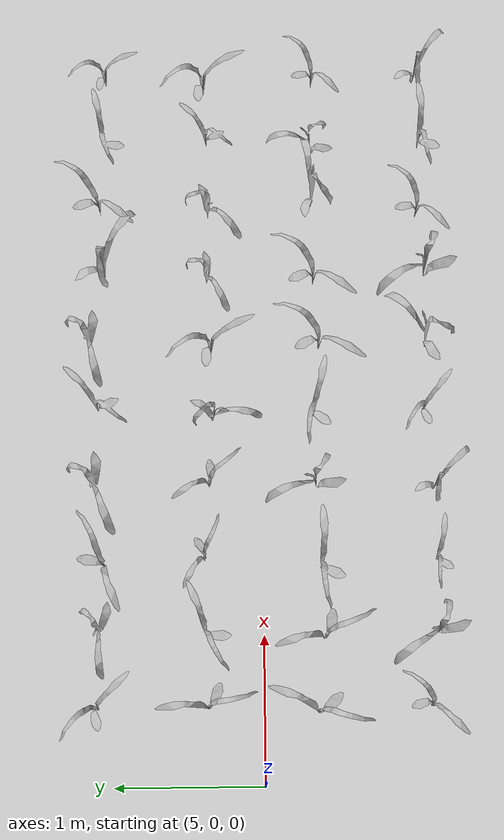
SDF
<sdf version="1.6">
 <world name="default">
  <model name="ground_plane">
   <static>1</static>
   <link name="link">
    <collision name="collision">
     <geometry><plane><normal>0 0 1</normal><size>100 100</size></plane></geometry>
     <surface>
      <contact><collide_bitmask>65535</collide_bitmask></contact>
      <friction><ode><mu>100</mu><mu2>50</mu2></ode></friction>
     </surface>
    </collision>
    <visual name="visual">
     <cast_shadows>0</cast_shadows>
     <geometry><plane><normal>0 0 1</normal><size>100 100</size></plane></geometry>
     <material>
      <script><uri>file://media/materials/scripts/gazebo.material</uri><name>Gazebo/Grey</name></script>
     </material>
    </visual>
   </link>
  </model>
  <model name="maize_02_0040">
   <pose>5.508538671722176 0.37122853467536077 0.05 0 -0 3.8519791514515536</pose>
   <link name="maize_02_0040_link">
    <inertial>
     <mass>5.0</mass>
     <inertia>
      <ixx>0.0033416667</ixx>
      <ixy>0</ixy>
      <ixz>0</ixz>
      <iyy>0.0033416667</iyy>
      <iyz>0</iyz>
      <izz>0.000016666667</izz>
     </inertia>
     <pose>0 0 0.1 0 0 0</pose>
    </inertial>
    <collision name="collision">
     <pose>0 0 0.2 0 -0 0</pose>
     <geometry><box><size>0.02 0.02 0.4</size></box></geometry>
     <surface><friction><ode><mu>10</mu><mu2>10</mu2></ode></friction></surface>
    </collision>
    <visual name="visual">
     <geometry>
      <mesh>
       <uri>model://maize_02/meshes/maize_02.dae</uri>
       <scale>0.6436153860965608 0.6436153860965608 0.6436153860965608</scale>
      </mesh>
     </geometry>
    </visual>
   </link>
  </model>
  <model name="maize_02_0041">
   <pose>5.508247634537746 1.1057725086224237 0.05 0 -0 1.3656492372692546</pose>
   <link name="maize_02_0041_link">
    <inertial>
     <mass>5.0</mass>
     <inertia>
      <ixx>0.0033416667</ixx>
      <ixy>0</ixy>
      <ixz>0</ixz>
      <iyy>0.0033416667</iyy>
      <iyz>0</iyz>
      <izz>0.000016666667</izz>
     </inertia>
     <pose>0 0 0.1 0 0 0</pose>
    </inertial>
    <collision name="collision">
     <pose>0 0 0.2 0 -0 0</pose>
     <geometry><box><size>0.02 0.02 0.4</size></box></geometry>
     <surface><friction><ode><mu>10</mu><mu2>10</mu2></ode></friction></surface>
    </collision>
    <visual name="visual">
     <geometry>
      <mesh>
       <uri>model://maize_02/meshes/maize_02.dae</uri>
       <scale>0.5968904333593144 0.5968904333593144 0.5968904333593144</scale>
      </mesh>
     </geometry>
    </visual>
   </link>
  </model>
  <model name="maize_02_0042">
   <pose>5.477564712540988 -0.3549859986503485 0.05 0 -0 3.381817545741341</pose>
   <link name="maize_02_0042_link">
    <inertial>
     <mass>5.0</mass>
     <inertia>
      <ixx>0.0033416667</ixx>
      <ixy>0</ixy>
      <ixz>0</ixz>
      <iyy>0.0033416667</iyy>
      <iyz>0</iyz>
      <izz>0.000016666667</izz>
     </inertia>
     <pose>0 0 0.1 0 0 0</pose>
    </inertial>
    <collision name="collision">
     <pose>0 0 0.2 0 -0 0</pose>
     <geometry><box><size>0.02 0.02 0.4</size></box></geometry>
     <surface><friction><ode><mu>10</mu><mu2>10</mu2></ode></friction></surface>
    </collision>
    <visual name="visual">
     <geometry>
      <mesh>
       <uri>model://maize_02/meshes/maize_02.dae</uri>
       <scale>0.6898692024972355 0.6898692024972355 0.6898692024972355</scale>
      </mesh>
     </geometry>
    </visual>
   </link>
  </model>
  <model name="maize_02_0043">
   <pose>5.513753535963712 -1.1026228524331758 0.05 0 -0 6.090240031902223</pose>
   <link name="maize_02_0043_link">
    <inertial>
     <mass>5.0</mass>
     <inertia>
      <ixx>0.0033416667</ixx>
      <ixy>0</ixy>
      <ixz>0</ixz>
      <iyy>0.0033416667</iyy>
      <iyz>0</iyz>
      <izz>0.000016666667</izz>
     </inertia>
     <pose>0 0 0.1 0 0 0</pose>
    </inertial>
    <collision name="collision">
     <pose>0 0 0.2 0 -0 0</pose>
     <geometry><box><size>0.02 0.02 0.4</size></box></geometry>
     <surface><friction><ode><mu>10</mu><mu2>10</mu2></ode></friction></surface>
    </collision>
    <visual name="visual">
     <geometry>
      <mesh>
       <uri>model://maize_02/meshes/maize_02.dae</uri>
       <scale>0.5732296245147511 0.5732296245147511 0.5732296245147511</scale>
      </mesh>
     </geometry>
    </visual>
   </link>
  </model>
  <model name="maize_02_0044">
   <pose>5.995136403965966 0.38139203172767944 0.05 0 -0 2.5735971861856024</pose>
   <link name="maize_02_0044_link">
    <inertial>
     <mass>5.0</mass>
     <inertia>
      <ixx>0.0033416667</ixx>
      <ixy>0</ixy>
      <ixz>0</ixz>
      <iyy>0.0033416667</iyy>
      <iyz>0</iyz>
      <izz>0.000016666667</izz>
     </inertia>
     <pose>0 0 0.1 0 0 0</pose>
    </inertial>
    <collision name="collision">
     <pose>0 0 0.2 0 -0 0</pose>
     <geometry><box><size>0.02 0.02 0.4</size></box></geometry>
     <surface><friction><ode><mu>10</mu><mu2>10</mu2></ode></friction></surface>
    </collision>
    <visual name="visual">
     <geometry>
      <mesh>
       <uri>model://maize_02/meshes/maize_02.dae</uri>
       <scale>0.6349071735627396 0.6349071735627396 0.6349071735627396</scale>
      </mesh>
     </geometry>
    </visual>
   </link>
  </model>
  <model name="maize_01_0045">
   <pose>6.030489953616502 1.0939182905264455 0.05 0 -0 4.014330397814</pose>
   <link name="maize_01_0045_link">
    <inertial>
     <mass>5.0</mass>
     <inertia>
      <ixx>0.0033416667</ixx>
      <ixy>0</ixy>
      <ixz>0</ixz>
      <iyy>0.0033416667</iyy>
      <iyz>0</iyz>
      <izz>0.000016666667</izz>
     </inertia>
     <pose>0 0 0.1 0 0 0</pose>
    </inertial>
    <collision name="collision">
     <pose>0 0 0.2 0 -0 0</pose>
     <geometry><box><size>0.02 0.02 0.4</size></box></geometry>
     <surface><friction><ode><mu>10</mu><mu2>10</mu2></ode></friction></surface>
    </collision>
    <visual name="visual">
     <geometry>
      <mesh>
       <uri>model://maize_01/meshes/maize_01.dae</uri>
       <scale>0.563741779426064 0.563741779426064 0.563741779426064</scale>
      </mesh>
     </geometry>
    </visual>
   </link>
  </model>
  <model name="maize_02_0046">
   <pose>5.964462491739474 -0.401234508534959 0.05 0 -0 4.0346840507894415</pose>
   <link name="maize_02_0046_link">
    <inertial>
     <mass>5.0</mass>
     <inertia>
      <ixx>0.0033416667</ixx>
      <ixy>0</ixy>
      <ixz>0</ixz>
      <iyy>0.0033416667</iyy>
      <iyz>0</iyz>
      <izz>0.000016666667</izz>
     </inertia>
     <pose>0 0 0.1 0 0 0</pose>
    </inertial>
    <collision name="collision">
     <pose>0 0 0.2 0 -0 0</pose>
     <geometry><box><size>0.02 0.02 0.4</size></box></geometry>
     <surface><friction><ode><mu>10</mu><mu2>10</mu2></ode></friction></surface>
    </collision>
    <visual name="visual">
     <geometry>
      <mesh>
       <uri>model://maize_02/meshes/maize_02.dae</uri>
       <scale>0.6661530232328033 0.6661530232328033 0.6661530232328033</scale>
      </mesh>
     </geometry>
    </visual>
   </link>
  </model>
  <model name="maize_01_0047">
   <pose>6.000341885603447 -1.166380562749363 0.05 0 -0 2.980441841507218</pose>
   <link name="maize_01_0047_link">
    <inertial>
     <mass>5.0</mass>
     <inertia>
      <ixx>0.0033416667</ixx>
      <ixy>0</ixy>
      <ixz>0</ixz>
      <iyy>0.0033416667</iyy>
      <iyz>0</iyz>
      <izz>0.000016666667</izz>
     </inertia>
     <pose>0 0 0.1 0 0 0</pose>
    </inertial>
    <collision name="collision">
     <pose>0 0 0.2 0 -0 0</pose>
     <geometry><box><size>0.02 0.02 0.4</size></box></geometry>
     <surface><friction><ode><mu>10</mu><mu2>10</mu2></ode></friction></surface>
    </collision>
    <visual name="visual">
     <geometry>
      <mesh>
       <uri>model://maize_01/meshes/maize_01.dae</uri>
       <scale>0.6481273047336568 0.6481273047336568 0.6481273047336568</scale>
      </mesh>
     </geometry>
    </visual>
   </link>
  </model>
  <model name="maize_02_0048">
   <pose>6.500896235067312 0.3994982656571864 0.05 0 -0 4.81775542901194</pose>
   <link name="maize_02_0048_link">
    <inertial>
     <mass>5.0</mass>
     <inertia>
      <ixx>0.0033416667</ixx>
      <ixy>0</ixy>
      <ixz>0</ixz>
      <iyy>0.0033416667</iyy>
      <iyz>0</iyz>
      <izz>0.000016666667</izz>
     </inertia>
     <pose>0 0 0.1 0 0 0</pose>
    </inertial>
    <collision name="collision">
     <pose>0 0 0.2 0 -0 0</pose>
     <geometry><box><size>0.02 0.02 0.4</size></box></geometry>
     <surface><friction><ode><mu>10</mu><mu2>10</mu2></ode></friction></surface>
    </collision>
    <visual name="visual">
     <geometry>
      <mesh>
       <uri>model://maize_02/meshes/maize_02.dae</uri>
       <scale>0.518825003112277 0.518825003112277 0.518825003112277</scale>
      </mesh>
     </geometry>
    </visual>
   </link>
  </model>
  <model name="maize_02_0049">
   <pose>6.433553168775987 1.0645917721028815 0.05 0 -0 5.684805562511841</pose>
   <link name="maize_02_0049_link">
    <inertial>
     <mass>5.0</mass>
     <inertia>
      <ixx>0.0033416667</ixx>
      <ixy>0</ixy>
      <ixz>0</ixz>
      <iyy>0.0033416667</iyy>
      <iyz>0</iyz>
      <izz>0.000016666667</izz>
     </inertia>
     <pose>0 0 0.1 0 0 0</pose>
    </inertial>
    <collision name="collision">
     <pose>0 0 0.2 0 -0 0</pose>
     <geometry><box><size>0.02 0.02 0.4</size></box></geometry>
     <surface><friction><ode><mu>10</mu><mu2>10</mu2></ode></friction></surface>
    </collision>
    <visual name="visual">
     <geometry>
      <mesh>
       <uri>model://maize_02/meshes/maize_02.dae</uri>
       <scale>0.6878711777327553 0.6878711777327553 0.6878711777327553</scale>
      </mesh>
     </geometry>
    </visual>
   </link>
  </model>
  <model name="maize_02_0050">
   <pose>6.439828008021891 -0.39327675813698565 0.05 0 -0 2.194946283106781</pose>
   <link name="maize_02_0050_link">
    <inertial>
     <mass>5.0</mass>
     <inertia>
      <ixx>0.0033416667</ixx>
      <ixy>0</ixy>
      <ixz>0</ixz>
      <iyy>0.0033416667</iyy>
      <iyz>0</iyz>
      <izz>0.000016666667</izz>
     </inertia>
     <pose>0 0 0.1 0 0 0</pose>
    </inertial>
    <collision name="collision">
     <pose>0 0 0.2 0 -0 0</pose>
     <geometry><box><size>0.02 0.02 0.4</size></box></geometry>
     <surface><friction><ode><mu>10</mu><mu2>10</mu2></ode></friction></surface>
    </collision>
    <visual name="visual">
     <geometry>
      <mesh>
       <uri>model://maize_02/meshes/maize_02.dae</uri>
       <scale>0.6766791331188605 0.6766791331188605 0.6766791331188605</scale>
      </mesh>
     </geometry>
    </visual>
   </link>
  </model>
  <model name="maize_02_0051">
   <pose>6.4901297735478405 -1.1700547971684288 0.05 0 -0 2.040236803387504</pose>
   <link name="maize_02_0051_link">
    <inertial>
     <mass>5.0</mass>
     <inertia>
      <ixx>0.0033416667</ixx>
      <ixy>0</ixy>
      <ixz>0</ixz>
      <iyy>0.0033416667</iyy>
      <iyz>0</iyz>
      <izz>0.000016666667</izz>
     </inertia>
     <pose>0 0 0.1 0 0 0</pose>
    </inertial>
    <collision name="collision">
     <pose>0 0 0.2 0 -0 0</pose>
     <geometry><box><size>0.02 0.02 0.4</size></box></geometry>
     <surface><friction><ode><mu>10</mu><mu2>10</mu2></ode></friction></surface>
    </collision>
    <visual name="visual">
     <geometry>
      <mesh>
       <uri>model://maize_02/meshes/maize_02.dae</uri>
       <scale>0.5012869665421671 0.5012869665421671 0.5012869665421671</scale>
      </mesh>
     </geometry>
    </visual>
   </link>
  </model>
  <model name="maize_02_0052">
   <pose>7.013105737039357 0.3662585339719964 0.05 0 -0 4.324599567351815</pose>
   <link name="maize_02_0052_link">
    <inertial>
     <mass>5.0</mass>
     <inertia>
      <ixx>0.0033416667</ixx>
      <ixy>0</ixy>
      <ixz>0</ixz>
      <iyy>0.0033416667</iyy>
      <iyz>0</iyz>
      <izz>0.000016666667</izz>
     </inertia>
     <pose>0 0 0.1 0 0 0</pose>
    </inertial>
    <collision name="collision">
     <pose>0 0 0.2 0 -0 0</pose>
     <geometry><box><size>0.02 0.02 0.4</size></box></geometry>
     <surface><friction><ode><mu>10</mu><mu2>10</mu2></ode></friction></surface>
    </collision>
    <visual name="visual">
     <geometry>
      <mesh>
       <uri>model://maize_02/meshes/maize_02.dae</uri>
       <scale>0.5473615412480283 0.5473615412480283 0.5473615412480283</scale>
      </mesh>
     </geometry>
    </visual>
   </link>
  </model>
  <model name="maize_01_0053">
   <pose>7.0058815124098635 1.1473312754775373 0.05 0 -0 4.311882094984159</pose>
   <link name="maize_01_0053_link">
    <inertial>
     <mass>5.0</mass>
     <inertia>
      <ixx>0.0033416667</ixx>
      <ixy>0</ixy>
      <ixz>0</ixz>
      <iyy>0.0033416667</iyy>
      <iyz>0</iyz>
      <izz>0.000016666667</izz>
     </inertia>
     <pose>0 0 0.1 0 0 0</pose>
    </inertial>
    <collision name="collision">
     <pose>0 0 0.2 0 -0 0</pose>
     <geometry><box><size>0.02 0.02 0.4</size></box></geometry>
     <surface><friction><ode><mu>10</mu><mu2>10</mu2></ode></friction></surface>
    </collision>
    <visual name="visual">
     <geometry>
      <mesh>
       <uri>model://maize_01/meshes/maize_01.dae</uri>
       <scale>0.6547409183923741 0.6547409183923741 0.6547409183923741</scale>
      </mesh>
     </geometry>
    </visual>
   </link>
  </model>
  <model name="maize_01_0054">
   <pose>7.001911262957034 -0.37030657016197815 0.05 0 -0 2.762685588442463</pose>
   <link name="maize_01_0054_link">
    <inertial>
     <mass>5.0</mass>
     <inertia>
      <ixx>0.0033416667</ixx>
      <ixy>0</ixy>
      <ixz>0</ixz>
      <iyy>0.0033416667</iyy>
      <iyz>0</iyz>
      <izz>0.000016666667</izz>
     </inertia>
     <pose>0 0 0.1 0 0 0</pose>
    </inertial>
    <collision name="collision">
     <pose>0 0 0.2 0 -0 0</pose>
     <geometry><box><size>0.02 0.02 0.4</size></box></geometry>
     <surface><friction><ode><mu>10</mu><mu2>10</mu2></ode></friction></surface>
    </collision>
    <visual name="visual">
     <geometry>
      <mesh>
       <uri>model://maize_01/meshes/maize_01.dae</uri>
       <scale>0.6290712766403317 0.6290712766403317 0.6290712766403317</scale>
      </mesh>
     </geometry>
    </visual>
   </link>
  </model>
  <model name="maize_01_0055">
   <pose>6.984045931779279 -1.1730163140719292 0.05 0 -0 0.015325419385185446</pose>
   <link name="maize_01_0055_link">
    <inertial>
     <mass>5.0</mass>
     <inertia>
      <ixx>0.0033416667</ixx>
      <ixy>0</ixy>
      <ixz>0</ixz>
      <iyy>0.0033416667</iyy>
      <iyz>0</iyz>
      <izz>0.000016666667</izz>
     </inertia>
     <pose>0 0 0.1 0 0 0</pose>
    </inertial>
    <collision name="collision">
     <pose>0 0 0.2 0 -0 0</pose>
     <geometry><box><size>0.02 0.02 0.4</size></box></geometry>
     <surface><friction><ode><mu>10</mu><mu2>10</mu2></ode></friction></surface>
    </collision>
    <visual name="visual">
     <geometry>
      <mesh>
       <uri>model://maize_01/meshes/maize_01.dae</uri>
       <scale>0.5232495200038368 0.5232495200038368 0.5232495200038368</scale>
      </mesh>
     </geometry>
    </visual>
   </link>
  </model>
  <model name="maize_01_0056">
   <pose>7.479353431787276 0.3416016435857694 0.05 0 -0 5.387166048303825</pose>
   <link name="maize_01_0056_link">
    <inertial>
     <mass>5.0</mass>
     <inertia>
      <ixx>0.0033416667</ixx>
      <ixy>0</ixy>
      <ixz>0</ixz>
      <iyy>0.0033416667</iyy>
      <iyz>0</iyz>
      <izz>0.000016666667</izz>
     </inertia>
     <pose>0 0 0.1 0 0 0</pose>
    </inertial>
    <collision name="collision">
     <pose>0 0 0.2 0 -0 0</pose>
     <geometry><box><size>0.02 0.02 0.4</size></box></geometry>
     <surface><friction><ode><mu>10</mu><mu2>10</mu2></ode></friction></surface>
    </collision>
    <visual name="visual">
     <geometry>
      <mesh>
       <uri>model://maize_01/meshes/maize_01.dae</uri>
       <scale>0.5590582129818472 0.5590582129818472 0.5590582129818472</scale>
      </mesh>
     </geometry>
    </visual>
   </link>
  </model>
  <model name="maize_02_0057">
   <pose>7.552459032273766 1.1293749127234762 0.05 0 -0 2.9601093972392585</pose>
   <link name="maize_02_0057_link">
    <inertial>
     <mass>5.0</mass>
     <inertia>
      <ixx>0.0033416667</ixx>
      <ixy>0</ixy>
      <ixz>0</ixz>
      <iyy>0.0033416667</iyy>
      <iyz>0</iyz>
      <izz>0.000016666667</izz>
     </inertia>
     <pose>0 0 0.1 0 0 0</pose>
    </inertial>
    <collision name="collision">
     <pose>0 0 0.2 0 -0 0</pose>
     <geometry><box><size>0.02 0.02 0.4</size></box></geometry>
     <surface><friction><ode><mu>10</mu><mu2>10</mu2></ode></friction></surface>
    </collision>
    <visual name="visual">
     <geometry>
      <mesh>
       <uri>model://maize_02/meshes/maize_02.dae</uri>
       <scale>0.5849335303680044 0.5849335303680044 0.5849335303680044</scale>
      </mesh>
     </geometry>
    </visual>
   </link>
  </model>
  <model name="maize_02_0058">
   <pose>7.510307462987893 -0.3559981346182162 0.05 0 -0 1.9501614496749535</pose>
   <link name="maize_02_0058_link">
    <inertial>
     <mass>5.0</mass>
     <inertia>
      <ixx>0.0033416667</ixx>
      <ixy>0</ixy>
      <ixz>0</ixz>
      <iyy>0.0033416667</iyy>
      <iyz>0</iyz>
      <izz>0.000016666667</izz>
     </inertia>
     <pose>0 0 0.1 0 0 0</pose>
    </inertial>
    <collision name="collision">
     <pose>0 0 0.2 0 -0 0</pose>
     <geometry><box><size>0.02 0.02 0.4</size></box></geometry>
     <surface><friction><ode><mu>10</mu><mu2>10</mu2></ode></friction></surface>
    </collision>
    <visual name="visual">
     <geometry>
      <mesh>
       <uri>model://maize_02/meshes/maize_02.dae</uri>
       <scale>0.6255541333146815 0.6255541333146815 0.6255541333146815</scale>
      </mesh>
     </geometry>
    </visual>
   </link>
  </model>
  <model name="maize_02_0059">
   <pose>7.524576231798705 -1.1128361373226654 0.05 0 -0 1.4912331629375006</pose>
   <link name="maize_02_0059_link">
    <inertial>
     <mass>5.0</mass>
     <inertia>
      <ixx>0.0033416667</ixx>
      <ixy>0</ixy>
      <ixz>0</ixz>
      <iyy>0.0033416667</iyy>
      <iyz>0</iyz>
      <izz>0.000016666667</izz>
     </inertia>
     <pose>0 0 0.1 0 0 0</pose>
    </inertial>
    <collision name="collision">
     <pose>0 0 0.2 0 -0 0</pose>
     <geometry><box><size>0.02 0.02 0.4</size></box></geometry>
     <surface><friction><ode><mu>10</mu><mu2>10</mu2></ode></friction></surface>
    </collision>
    <visual name="visual">
     <geometry>
      <mesh>
       <uri>model://maize_02/meshes/maize_02.dae</uri>
       <scale>0.5276945218734642 0.5276945218734642 0.5276945218734642</scale>
      </mesh>
     </geometry>
    </visual>
   </link>
  </model>
  <model name="maize_02_0060">
   <pose>7.967128897022946 0.3516446050761034 0.05 0 -0 1.0541702332070162</pose>
   <link name="maize_02_0060_link">
    <inertial>
     <mass>5.0</mass>
     <inertia>
      <ixx>0.0033416667</ixx>
      <ixy>0</ixy>
      <ixz>0</ixz>
      <iyy>0.0033416667</iyy>
      <iyz>0</iyz>
      <izz>0.000016666667</izz>
     </inertia>
     <pose>0 0 0.1 0 0 0</pose>
    </inertial>
    <collision name="collision">
     <pose>0 0 0.2 0 -0 0</pose>
     <geometry><box><size>0.02 0.02 0.4</size></box></geometry>
     <surface><friction><ode><mu>10</mu><mu2>10</mu2></ode></friction></surface>
    </collision>
    <visual name="visual">
     <geometry>
      <mesh>
       <uri>model://maize_02/meshes/maize_02.dae</uri>
       <scale>0.6547558853223315 0.6547558853223315 0.6547558853223315</scale>
      </mesh>
     </geometry>
    </visual>
   </link>
  </model>
  <model name="maize_01_0061">
   <pose>8.025357547890483 1.1958245689321003 0.05 0 -0 4.187616569241914</pose>
   <link name="maize_01_0061_link">
    <inertial>
     <mass>5.0</mass>
     <inertia>
      <ixx>0.0033416667</ixx>
      <ixy>0</ixy>
      <ixz>0</ixz>
      <iyy>0.0033416667</iyy>
      <iyz>0</iyz>
      <izz>0.000016666667</izz>
     </inertia>
     <pose>0 0 0.1 0 0 0</pose>
    </inertial>
    <collision name="collision">
     <pose>0 0 0.2 0 -0 0</pose>
     <geometry><box><size>0.02 0.02 0.4</size></box></geometry>
     <surface><friction><ode><mu>10</mu><mu2>10</mu2></ode></friction></surface>
    </collision>
    <visual name="visual">
     <geometry>
      <mesh>
       <uri>model://maize_01/meshes/maize_01.dae</uri>
       <scale>0.6160220805500088 0.6160220805500088 0.6160220805500088</scale>
      </mesh>
     </geometry>
    </visual>
   </link>
  </model>
  <model name="maize_02_0062">
   <pose>7.991043654919017 -0.3999523052047669 0.05 0 -0 0.04643870348771934</pose>
   <link name="maize_02_0062_link">
    <inertial>
     <mass>5.0</mass>
     <inertia>
      <ixx>0.0033416667</ixx>
      <ixy>0</ixy>
      <ixz>0</ixz>
      <iyy>0.0033416667</iyy>
      <iyz>0</iyz>
      <izz>0.000016666667</izz>
     </inertia>
     <pose>0 0 0.1 0 0 0</pose>
    </inertial>
    <collision name="collision">
     <pose>0 0 0.2 0 -0 0</pose>
     <geometry><box><size>0.02 0.02 0.4</size></box></geometry>
     <surface><friction><ode><mu>10</mu><mu2>10</mu2></ode></friction></surface>
    </collision>
    <visual name="visual">
     <geometry>
      <mesh>
       <uri>model://maize_02/meshes/maize_02.dae</uri>
       <scale>0.6944440376925065 0.6944440376925065 0.6944440376925065</scale>
      </mesh>
     </geometry>
    </visual>
   </link>
  </model>
  <model name="maize_01_0063">
   <pose>8.010794559632046 -1.1463470504491677 0.05 0 -0 1.5970168984143949</pose>
   <link name="maize_01_0063_link">
    <inertial>
     <mass>5.0</mass>
     <inertia>
      <ixx>0.0033416667</ixx>
      <ixy>0</ixy>
      <ixz>0</ixz>
      <iyy>0.0033416667</iyy>
      <iyz>0</iyz>
      <izz>0.000016666667</izz>
     </inertia>
     <pose>0 0 0.1 0 0 0</pose>
    </inertial>
    <collision name="collision">
     <pose>0 0 0.2 0 -0 0</pose>
     <geometry><box><size>0.02 0.02 0.4</size></box></geometry>
     <surface><friction><ode><mu>10</mu><mu2>10</mu2></ode></friction></surface>
    </collision>
    <visual name="visual">
     <geometry>
      <mesh>
       <uri>model://maize_01/meshes/maize_01.dae</uri>
       <scale>0.6521103392606552 0.6521103392606552 0.6521103392606552</scale>
      </mesh>
     </geometry>
    </visual>
   </link>
  </model>
  <model name="maize_01_0064">
   <pose>8.488983933144842 0.38167689782954617 0.05 0 -0 4.425491630526248</pose>
   <link name="maize_01_0064_link">
    <inertial>
     <mass>5.0</mass>
     <inertia>
      <ixx>0.0033416667</ixx>
      <ixy>0</ixy>
      <ixz>0</ixz>
      <iyy>0.0033416667</iyy>
      <iyz>0</iyz>
      <izz>0.000016666667</izz>
     </inertia>
     <pose>0 0 0.1 0 0 0</pose>
    </inertial>
    <collision name="collision">
     <pose>0 0 0.2 0 -0 0</pose>
     <geometry><box><size>0.02 0.02 0.4</size></box></geometry>
     <surface><friction><ode><mu>10</mu><mu2>10</mu2></ode></friction></surface>
    </collision>
    <visual name="visual">
     <geometry>
      <mesh>
       <uri>model://maize_01/meshes/maize_01.dae</uri>
       <scale>0.5294811405635217 0.5294811405635217 0.5294811405635217</scale>
      </mesh>
     </geometry>
    </visual>
   </link>
  </model>
  <model name="maize_01_0065">
   <pose>8.538025914869634 1.100922375025421 0.05 0 -0 0.2256752153151473</pose>
   <link name="maize_01_0065_link">
    <inertial>
     <mass>5.0</mass>
     <inertia>
      <ixx>0.0033416667</ixx>
      <ixy>0</ixy>
      <ixz>0</ixz>
      <iyy>0.0033416667</iyy>
      <iyz>0</iyz>
      <izz>0.000016666667</izz>
     </inertia>
     <pose>0 0 0.1 0 0 0</pose>
    </inertial>
    <collision name="collision">
     <pose>0 0 0.2 0 -0 0</pose>
     <geometry><box><size>0.02 0.02 0.4</size></box></geometry>
     <surface><friction><ode><mu>10</mu><mu2>10</mu2></ode></friction></surface>
    </collision>
    <visual name="visual">
     <geometry>
      <mesh>
       <uri>model://maize_01/meshes/maize_01.dae</uri>
       <scale>0.6982697495104015 0.6982697495104015 0.6982697495104015</scale>
      </mesh>
     </geometry>
    </visual>
   </link>
  </model>
  <model name="maize_02_0066">
   <pose>8.46835413430239 -0.3677256704935248 0.05 0 -0 6.24193182697013</pose>
   <link name="maize_02_0066_link">
    <inertial>
     <mass>5.0</mass>
     <inertia>
      <ixx>0.0033416667</ixx>
      <ixy>0</ixy>
      <ixz>0</ixz>
      <iyy>0.0033416667</iyy>
      <iyz>0</iyz>
      <izz>0.000016666667</izz>
     </inertia>
     <pose>0 0 0.1 0 0 0</pose>
    </inertial>
    <collision name="collision">
     <pose>0 0 0.2 0 -0 0</pose>
     <geometry><box><size>0.02 0.02 0.4</size></box></geometry>
     <surface><friction><ode><mu>10</mu><mu2>10</mu2></ode></friction></surface>
    </collision>
    <visual name="visual">
     <geometry>
      <mesh>
       <uri>model://maize_02/meshes/maize_02.dae</uri>
       <scale>0.6861181668454427 0.6861181668454427 0.6861181668454427</scale>
      </mesh>
     </geometry>
    </visual>
   </link>
  </model>
  <model name="maize_01_0067">
   <pose>8.52888216326449 -1.156221202146838 0.05 0 -0 2.9477891915583605</pose>
   <link name="maize_01_0067_link">
    <inertial>
     <mass>5.0</mass>
     <inertia>
      <ixx>0.0033416667</ixx>
      <ixy>0</ixy>
      <ixz>0</ixz>
      <iyy>0.0033416667</iyy>
      <iyz>0</iyz>
      <izz>0.000016666667</izz>
     </inertia>
     <pose>0 0 0.1 0 0 0</pose>
    </inertial>
    <collision name="collision">
     <pose>0 0 0.2 0 -0 0</pose>
     <geometry><box><size>0.02 0.02 0.4</size></box></geometry>
     <surface><friction><ode><mu>10</mu><mu2>10</mu2></ode></friction></surface>
    </collision>
    <visual name="visual">
     <geometry>
      <mesh>
       <uri>model://maize_01/meshes/maize_01.dae</uri>
       <scale>0.6991678110856178 0.6991678110856178 0.6991678110856178</scale>
      </mesh>
     </geometry>
    </visual>
   </link>
  </model>
  <model name="maize_01_0068">
   <pose>8.984433488908518 0.3736283479455351 0.05 0 -0 4.6732418556630275</pose>
   <link name="maize_01_0068_link">
    <inertial>
     <mass>5.0</mass>
     <inertia>
      <ixx>0.0033416667</ixx>
      <ixy>0</ixy>
      <ixz>0</ixz>
      <iyy>0.0033416667</iyy>
      <iyz>0</iyz>
      <izz>0.000016666667</izz>
     </inertia>
     <pose>0 0 0.1 0 0 0</pose>
    </inertial>
    <collision name="collision">
     <pose>0 0 0.2 0 -0 0</pose>
     <geometry><box><size>0.02 0.02 0.4</size></box></geometry>
     <surface><friction><ode><mu>10</mu><mu2>10</mu2></ode></friction></surface>
    </collision>
    <visual name="visual">
     <geometry>
      <mesh>
       <uri>model://maize_01/meshes/maize_01.dae</uri>
       <scale>0.5650532563452445 0.5650532563452445 0.5650532563452445</scale>
      </mesh>
     </geometry>
    </visual>
   </link>
  </model>
  <model name="maize_02_0069">
   <pose>9.0100271684567 1.1383294759894174 0.05 0 -0 6.182265710813368</pose>
   <link name="maize_02_0069_link">
    <inertial>
     <mass>5.0</mass>
     <inertia>
      <ixx>0.0033416667</ixx>
      <ixy>0</ixy>
      <ixz>0</ixz>
      <iyy>0.0033416667</iyy>
      <iyz>0</iyz>
      <izz>0.000016666667</izz>
     </inertia>
     <pose>0 0 0.1 0 0 0</pose>
    </inertial>
    <collision name="collision">
     <pose>0 0 0.2 0 -0 0</pose>
     <geometry><box><size>0.02 0.02 0.4</size></box></geometry>
     <surface><friction><ode><mu>10</mu><mu2>10</mu2></ode></friction></surface>
    </collision>
    <visual name="visual">
     <geometry>
      <mesh>
       <uri>model://maize_02/meshes/maize_02.dae</uri>
       <scale>0.6707688918958439 0.6707688918958439 0.6707688918958439</scale>
      </mesh>
     </geometry>
    </visual>
   </link>
  </model>
  <model name="maize_01_0070">
   <pose>9.067221416240958 -0.3695165919739534 0.05 0 -0 0.9394603010474375</pose>
   <link name="maize_01_0070_link">
    <inertial>
     <mass>5.0</mass>
     <inertia>
      <ixx>0.0033416667</ixx>
      <ixy>0</ixy>
      <ixz>0</ixz>
      <iyy>0.0033416667</iyy>
      <iyz>0</iyz>
      <izz>0.000016666667</izz>
     </inertia>
     <pose>0 0 0.1 0 0 0</pose>
    </inertial>
    <collision name="collision">
     <pose>0 0 0.2 0 -0 0</pose>
     <geometry><box><size>0.02 0.02 0.4</size></box></geometry>
     <surface><friction><ode><mu>10</mu><mu2>10</mu2></ode></friction></surface>
    </collision>
    <visual name="visual">
     <geometry>
      <mesh>
       <uri>model://maize_01/meshes/maize_01.dae</uri>
       <scale>0.6364867699887353 0.6364867699887353 0.6364867699887353</scale>
      </mesh>
     </geometry>
    </visual>
   </link>
  </model>
  <model name="maize_02_0071">
   <pose>8.968608668467509 -1.1089136914546232 0.05 0 -0 6.026629583860258</pose>
   <link name="maize_02_0071_link">
    <inertial>
     <mass>5.0</mass>
     <inertia>
      <ixx>0.0033416667</ixx>
      <ixy>0</ixy>
      <ixz>0</ixz>
      <iyy>0.0033416667</iyy>
      <iyz>0</iyz>
      <izz>0.000016666667</izz>
     </inertia>
     <pose>0 0 0.1 0 0 0</pose>
    </inertial>
    <collision name="collision">
     <pose>0 0 0.2 0 -0 0</pose>
     <geometry><box><size>0.02 0.02 0.4</size></box></geometry>
     <surface><friction><ode><mu>10</mu><mu2>10</mu2></ode></friction></surface>
    </collision>
    <visual name="visual">
     <geometry>
      <mesh>
       <uri>model://maize_02/meshes/maize_02.dae</uri>
       <scale>0.6018682463665869 0.6018682463665869 0.6018682463665869</scale>
      </mesh>
     </geometry>
    </visual>
   </link>
  </model>
  <model name="maize_02_0072">
   <pose>9.53924674021463 0.3818068151574791 0.05 0 -0 2.9533368257817014</pose>
   <link name="maize_02_0072_link">
    <inertial>
     <mass>5.0</mass>
     <inertia>
      <ixx>0.0033416667</ixx>
      <ixy>0</ixy>
      <ixz>0</ixz>
      <iyy>0.0033416667</iyy>
      <iyz>0</iyz>
      <izz>0.000016666667</izz>
     </inertia>
     <pose>0 0 0.1 0 0 0</pose>
    </inertial>
    <collision name="collision">
     <pose>0 0 0.2 0 -0 0</pose>
     <geometry><box><size>0.02 0.02 0.4</size></box></geometry>
     <surface><friction><ode><mu>10</mu><mu2>10</mu2></ode></friction></surface>
    </collision>
    <visual name="visual">
     <geometry>
      <mesh>
       <uri>model://maize_02/meshes/maize_02.dae</uri>
       <scale>0.5025044564252708 0.5025044564252708 0.5025044564252708</scale>
      </mesh>
     </geometry>
    </visual>
   </link>
  </model>
  <model name="maize_02_0073">
   <pose>9.498138914861062 1.1056986818622243 0.05 0 -0 2.4020923645662595</pose>
   <link name="maize_02_0073_link">
    <inertial>
     <mass>5.0</mass>
     <inertia>
      <ixx>0.0033416667</ixx>
      <ixy>0</ixy>
      <ixz>0</ixz>
      <iyy>0.0033416667</iyy>
      <iyz>0</iyz>
      <izz>0.000016666667</izz>
     </inertia>
     <pose>0 0 0.1 0 0 0</pose>
    </inertial>
    <collision name="collision">
     <pose>0 0 0.2 0 -0 0</pose>
     <geometry><box><size>0.02 0.02 0.4</size></box></geometry>
     <surface><friction><ode><mu>10</mu><mu2>10</mu2></ode></friction></surface>
    </collision>
    <visual name="visual">
     <geometry>
      <mesh>
       <uri>model://maize_02/meshes/maize_02.dae</uri>
       <scale>0.6094754086747837 0.6094754086747837 0.6094754086747837</scale>
      </mesh>
     </geometry>
    </visual>
   </link>
  </model>
  <model name="maize_01_0074">
   <pose>9.476553444214236 -0.3721577568450272 0.05 0 -0 2.401996951828859</pose>
   <link name="maize_01_0074_link">
    <inertial>
     <mass>5.0</mass>
     <inertia>
      <ixx>0.0033416667</ixx>
      <ixy>0</ixy>
      <ixz>0</ixz>
      <iyy>0.0033416667</iyy>
      <iyz>0</iyz>
      <izz>0.000016666667</izz>
     </inertia>
     <pose>0 0 0.1 0 0 0</pose>
    </inertial>
    <collision name="collision">
     <pose>0 0 0.2 0 -0 0</pose>
     <geometry><box><size>0.02 0.02 0.4</size></box></geometry>
     <surface><friction><ode><mu>10</mu><mu2>10</mu2></ode></friction></surface>
    </collision>
    <visual name="visual">
     <geometry>
      <mesh>
       <uri>model://maize_01/meshes/maize_01.dae</uri>
       <scale>0.5258600512704489 0.5258600512704489 0.5258600512704489</scale>
      </mesh>
     </geometry>
    </visual>
   </link>
  </model>
  <model name="maize_02_0075">
   <pose>9.493655640496575 -1.1420428278874688 0.05 0 -0 2.2325181513569476</pose>
   <link name="maize_02_0075_link">
    <inertial>
     <mass>5.0</mass>
     <inertia>
      <ixx>0.0033416667</ixx>
      <ixy>0</ixy>
      <ixz>0</ixz>
      <iyy>0.0033416667</iyy>
      <iyz>0</iyz>
      <izz>0.000016666667</izz>
     </inertia>
     <pose>0 0 0.1 0 0 0</pose>
    </inertial>
    <collision name="collision">
     <pose>0 0 0.2 0 -0 0</pose>
     <geometry><box><size>0.02 0.02 0.4</size></box></geometry>
     <surface><friction><ode><mu>10</mu><mu2>10</mu2></ode></friction></surface>
    </collision>
    <visual name="visual">
     <geometry>
      <mesh>
       <uri>model://maize_02/meshes/maize_02.dae</uri>
       <scale>0.6390689645392028 0.6390689645392028 0.6390689645392028</scale>
      </mesh>
     </geometry>
    </visual>
   </link>
  </model>
  <model name="maize_02_0076">
   <pose>9.940457432794531 0.40286953500578737 0.05 0 -0 1.0488333325210475</pose>
   <link name="maize_02_0076_link">
    <inertial>
     <mass>5.0</mass>
     <inertia>
      <ixx>0.0033416667</ixx>
      <ixy>0</ixy>
      <ixz>0</ixz>
      <iyy>0.0033416667</iyy>
      <iyz>0</iyz>
      <izz>0.000016666667</izz>
     </inertia>
     <pose>0 0 0.1 0 0 0</pose>
    </inertial>
    <collision name="collision">
     <pose>0 0 0.2 0 -0 0</pose>
     <geometry><box><size>0.02 0.02 0.4</size></box></geometry>
     <surface><friction><ode><mu>10</mu><mu2>10</mu2></ode></friction></surface>
    </collision>
    <visual name="visual">
     <geometry>
      <mesh>
       <uri>model://maize_02/meshes/maize_02.dae</uri>
       <scale>0.6480931039458268 0.6480931039458268 0.6480931039458268</scale>
      </mesh>
     </geometry>
    </visual>
   </link>
  </model>
  <model name="maize_02_0077">
   <pose>10.024448450896505 1.1130349029367208 0.05 0 -0 0.9820390491616737</pose>
   <link name="maize_02_0077_link">
    <inertial>
     <mass>5.0</mass>
     <inertia>
      <ixx>0.0033416667</ixx>
      <ixy>0</ixy>
      <ixz>0</ixz>
      <iyy>0.0033416667</iyy>
      <iyz>0</iyz>
      <izz>0.000016666667</izz>
     </inertia>
     <pose>0 0 0.1 0 0 0</pose>
    </inertial>
    <collision name="collision">
     <pose>0 0 0.2 0 -0 0</pose>
     <geometry><box><size>0.02 0.02 0.4</size></box></geometry>
     <surface><friction><ode><mu>10</mu><mu2>10</mu2></ode></friction></surface>
    </collision>
    <visual name="visual">
     <geometry>
      <mesh>
       <uri>model://maize_02/meshes/maize_02.dae</uri>
       <scale>0.5166771366475909 0.5166771366475909 0.5166771366475909</scale>
      </mesh>
     </geometry>
    </visual>
   </link>
  </model>
  <model name="maize_02_0078">
   <pose>9.997618416034548 -0.38256157509568967 0.05 0 -0 6.040932530011885</pose>
   <link name="maize_02_0078_link">
    <inertial>
     <mass>5.0</mass>
     <inertia>
      <ixx>0.0033416667</ixx>
      <ixy>0</ixy>
      <ixz>0</ixz>
      <iyy>0.0033416667</iyy>
      <iyz>0</iyz>
      <izz>0.000016666667</izz>
     </inertia>
     <pose>0 0 0.1 0 0 0</pose>
    </inertial>
    <collision name="collision">
     <pose>0 0 0.2 0 -0 0</pose>
     <geometry><box><size>0.02 0.02 0.4</size></box></geometry>
     <surface><friction><ode><mu>10</mu><mu2>10</mu2></ode></friction></surface>
    </collision>
    <visual name="visual">
     <geometry>
      <mesh>
       <uri>model://maize_02/meshes/maize_02.dae</uri>
       <scale>0.5541674164733108 0.5541674164733108 0.5541674164733108</scale>
      </mesh>
     </geometry>
    </visual>
   </link>
  </model>
  <model name="maize_01_0079">
   <pose>10.02640274301223 -1.1276670514922238 0.05 0 -0 0.13435622497845268</pose>
   <link name="maize_01_0079_link">
    <inertial>
     <mass>5.0</mass>
     <inertia>
      <ixx>0.0033416667</ixx>
      <ixy>0</ixy>
      <ixz>0</ixz>
      <iyy>0.0033416667</iyy>
      <iyz>0</iyz>
      <izz>0.000016666667</izz>
     </inertia>
     <pose>0 0 0.1 0 0 0</pose>
    </inertial>
    <collision name="collision">
     <pose>0 0 0.2 0 -0 0</pose>
     <geometry><box><size>0.02 0.02 0.4</size></box></geometry>
     <surface><friction><ode><mu>10</mu><mu2>10</mu2></ode></friction></surface>
    </collision>
    <visual name="visual">
     <geometry>
      <mesh>
       <uri>model://maize_01/meshes/maize_01.dae</uri>
       <scale>0.5609064245227091 0.5609064245227091 0.5609064245227091</scale>
      </mesh>
     </geometry>
    </visual>
   </link>
  </model>
 </world>
</sdf>
